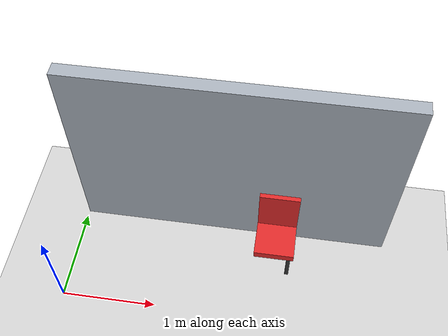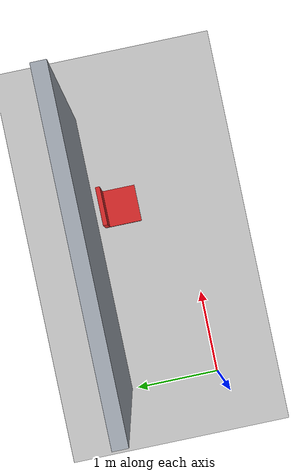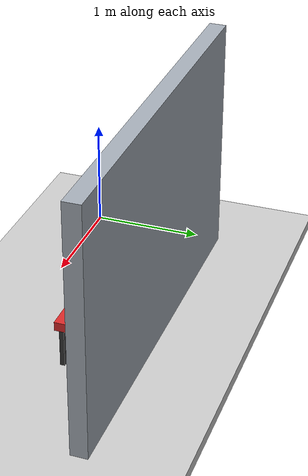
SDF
<sdf version="1.9">
 <world name="default">
  <model name="ground_plane">
   <static>true</static>
   <pose>5.15 0 -0.05 0 0 0</pose>
   <link name="body">
    <collision name="collision"><geometry><box><size>14.3 12 0.1</size></box></geometry></collision>
    <visual name="visual">
     <geometry><box><size>14.3 12 0.1</size></box></geometry>
     <material><ambient>0.8 0.8 0.8 1</ambient><diffuse>0.8 0.8 0.8 1</diffuse></material>
    </visual>
   </link>
  </model>
  <model name="hall_1_1">
   <static>true</static>
   <pose>1.7000000000000002 1.15 1.1 0 0 0</pose>
   <link name="body">
    <collision name="collision">
     <geometry><box><size>3.4000000000000004 0.15 2.2</size></box></geometry>
    </collision>
    <visual name="visual">
     <geometry><box><size>3.4000000000000004 0.15 2.2</size></box></geometry>
     <material><ambient>0.65 0.68 0.72 1</ambient><diffuse>0.65 0.68 0.72 1</diffuse></material>
    </visual>
   </link>
  </model>
  <model name="chair_seat">
   <static>true</static>
   <pose>2.2 0.7499999999999999 0.4 0 0 0</pose>
   <link name="body">
    <collision name="collision"><geometry><box><size>0.42 0.42 0.08</size></box></geometry></collision>
    <visual name="visual">
     <geometry><box><size>0.42 0.42 0.08</size></box></geometry>
     <material><ambient>0.86 0.16 0.16 1</ambient><diffuse>0.86 0.16 0.16 1</diffuse></material>
    </visual>
   </link>
  </model>
  <model name="chair_back">
   <static>true</static>
   <pose>2.2 0.94 0.67 0 0 0</pose>
   <link name="body">
    <collision name="collision"><geometry><box><size>0.42 0.05 0.5</size></box></geometry></collision>
    <visual name="visual">
     <geometry><box><size>0.42 0.05 0.5</size></box></geometry>
     <material><ambient>0.86 0.16 0.16 1</ambient><diffuse>0.86 0.16 0.16 1</diffuse></material>
    </visual>
   </link>
  </model>
  <model name="chair_leg_-0.16_0.16">
   <static>true</static>
   <pose>2.04 0.9099999999999999 0.19 0 0 0</pose>
   <link name="body">
    <collision name="collision"><geometry><box><size>0.04 0.04 0.38</size></box></geometry></collision>
    <visual name="visual">
     <geometry><box><size>0.04 0.04 0.38</size></box></geometry>
     <material><ambient>0.2 0.2 0.2 1</ambient><diffuse>0.2 0.2 0.2 1</diffuse></material>
    </visual>
   </link>
  </model>
  <model name="chair_leg_0.16_-0.16">
   <static>true</static>
   <pose>2.3600000000000003 0.5899999999999999 0.19 0 0 0</pose>
   <link name="body">
    <collision name="collision"><geometry><box><size>0.04 0.04 0.38</size></box></geometry></collision>
    <visual name="visual">
     <geometry><box><size>0.04 0.04 0.38</size></box></geometry>
     <material><ambient>0.2 0.2 0.2 1</ambient><diffuse>0.2 0.2 0.2 1</diffuse></material>
    </visual>
   </link>
  </model>
  <model name="chair_leg_0.16_0.16">
   <static>true</static>
   <pose>2.3600000000000003 0.9099999999999999 0.19 0 0 0</pose>
   <link name="body">
    <collision name="collision"><geometry><box><size>0.04 0.04 0.38</size></box></geometry></collision>
    <visual name="visual">
     <geometry><box><size>0.04 0.04 0.38</size></box></geometry>
     <material><ambient>0.2 0.2 0.2 1</ambient><diffuse>0.2 0.2 0.2 1</diffuse></material>
    </visual>
   </link>
  </model>
 </world>
</sdf>
